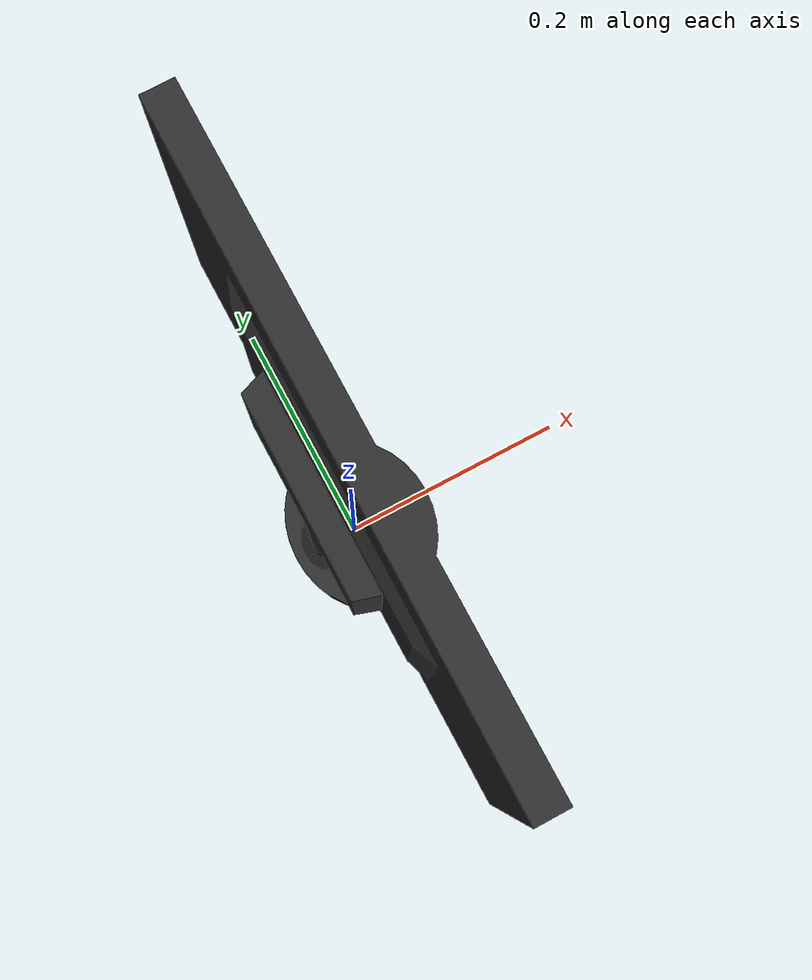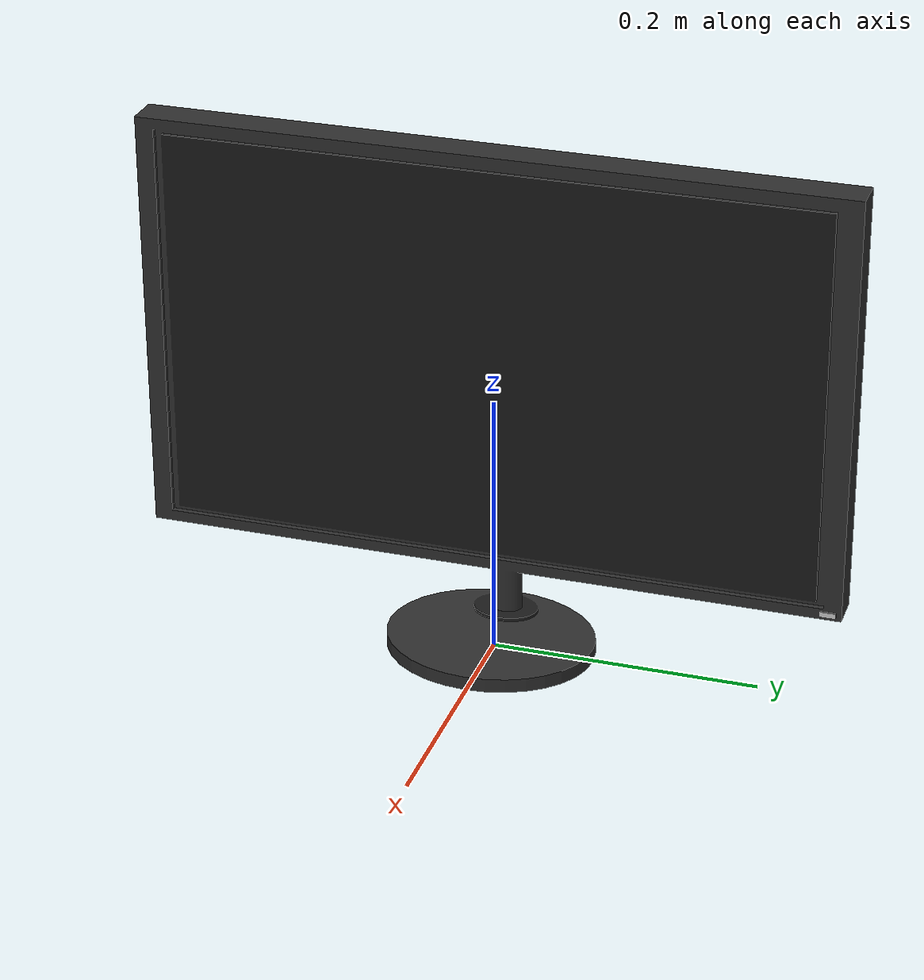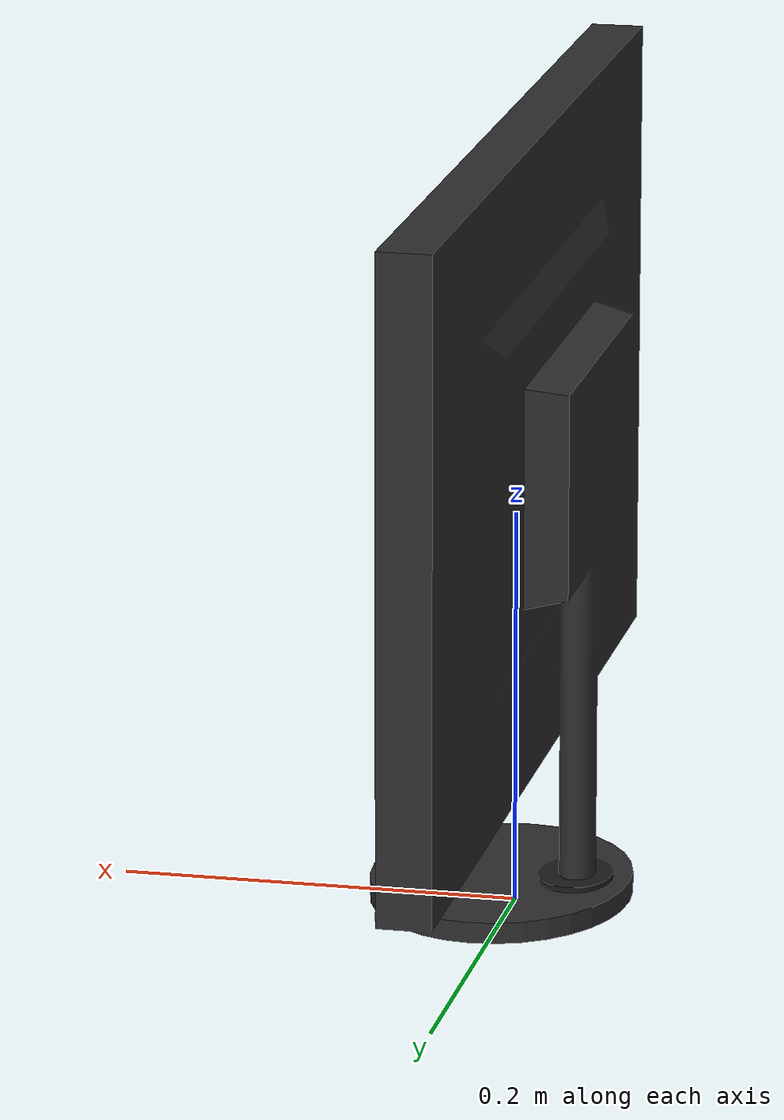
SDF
<?xml version='1.0' ?>
<sdf version='1.6'>
  <model name='monitor'>
    <static>false</static>
    <link name='link'>
      <collision name='collision'>
        <geometry>
          <mesh>
            <uri>model://volta_simulation/models/monitor/meshes/monitor.dae</uri>
          </mesh>
        </geometry>
        <surface>
          <friction>
            <ode>
              <mu>100</mu>
              <mu2>50</mu2>
            </ode>
          </friction>
        </surface>
      </collision>
      <visual name='visual'>
        <geometry>
          <mesh>
            <uri>model://volta_simulation/models/monitor/meshes/monitor.dae</uri>
          </mesh>
        </geometry>
      </visual>
      <inertial>
        <pose>0 -0.01 0.1 0 0 0</pose>
        <mass>2</mass>
        <inertia>
          <ixx>0.002 </ixx>
          <iyy>0.025 </iyy>
          <izz>0.03</izz>
          <ixy>0</ixy>
          <ixz>0</ixz>
          <iyz>0</iyz>
        </inertia>
      </inertial>
    </link>
  </model>
</sdf>
